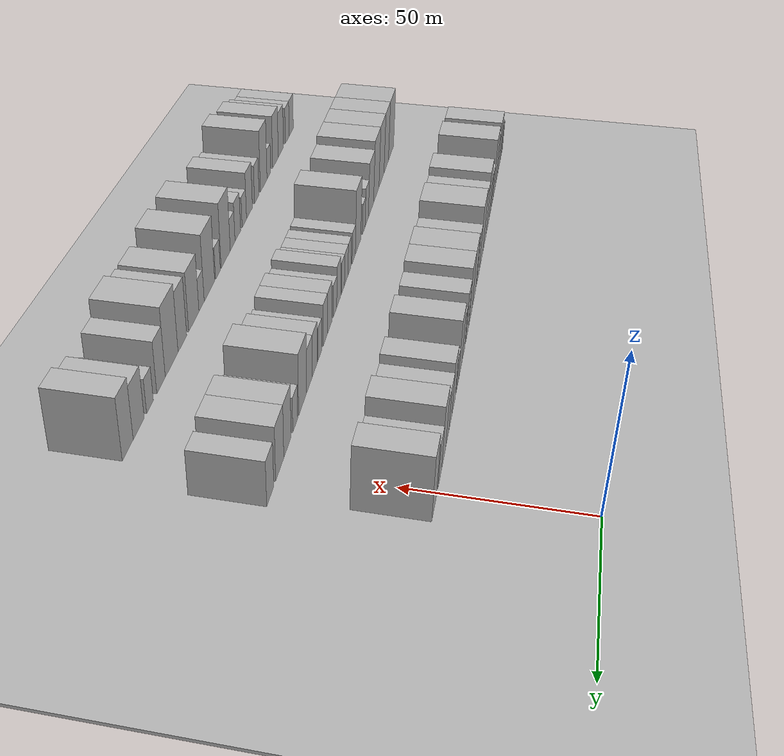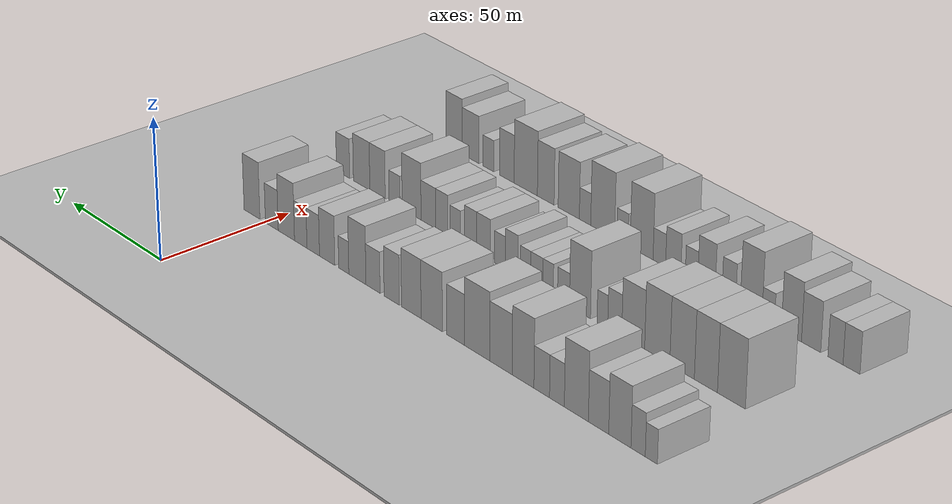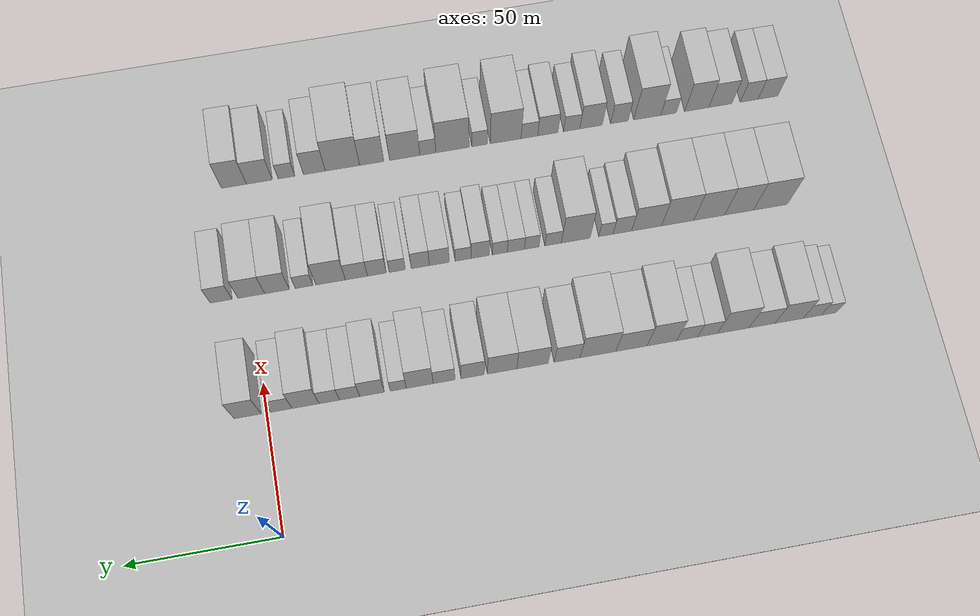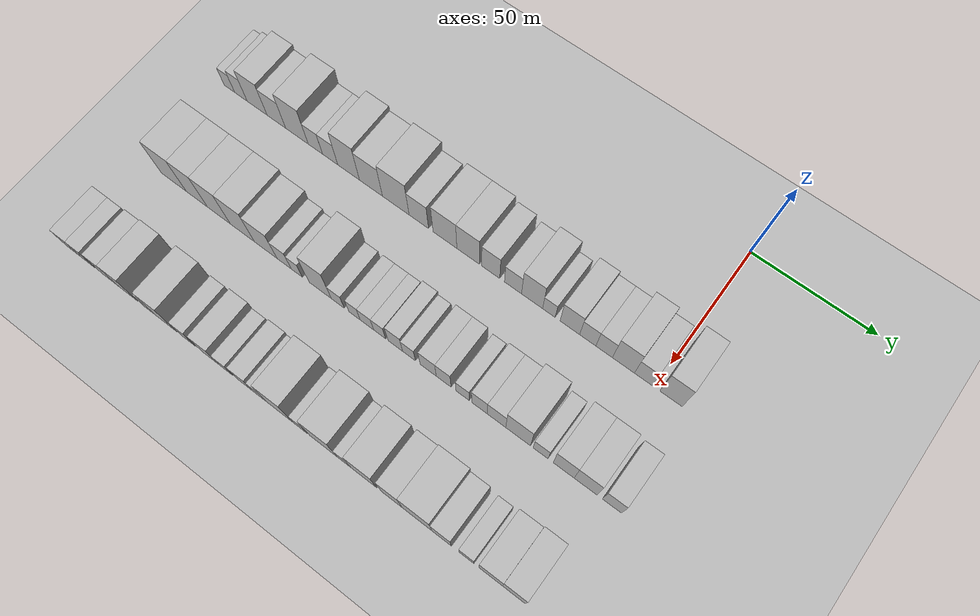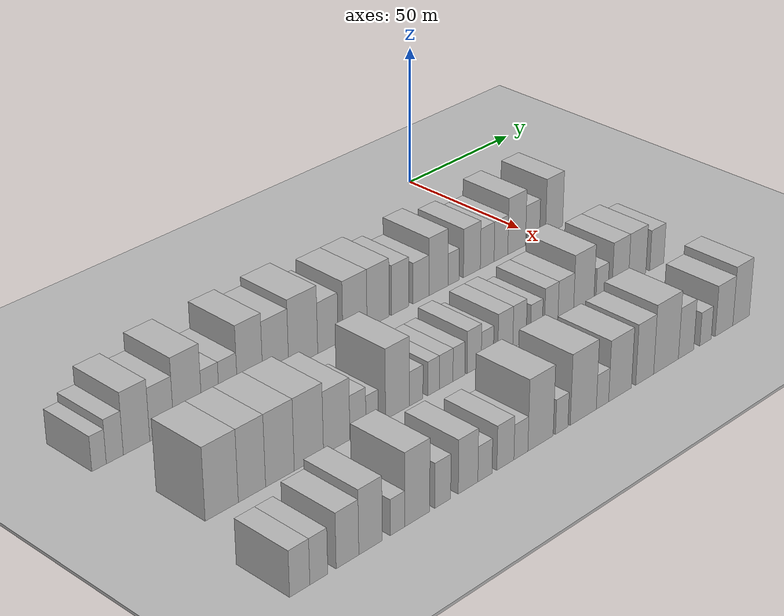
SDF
<sdf version="1.6">
 <world name="default">
  <include><name>ground_plane_1</name><uri>model://HANNAS_ground_plane</uri></include>
  <include>
   <name>ground_plane_2</name>
   <uri>model://HANNAS_ground_plane</uri>
   <pose>100 0 0  0 0 0</pose>
  </include>
  <model name="building_46">
   <static>1</static>
   <pose>50.0000 -186.2213 0 0.000000 0.000000 0.000000</pose>
   <link name="link">
    <pose>0 0 6.00 0 0 0</pose>
    <collision name="collision"><geometry><box><size>20.0000 5.1179 12.0000</size></box></geometry></collision>
    <visual name="visual">
     <cast_shadows>0</cast_shadows>
     <geometry><box><size>20.0000 5.1179 12.0000</size></box></geometry>
     <material>
      <script>
       <uri>model://HANNAS_wall/materials/scripts</uri>
       <uri>model://HANNAS_wall/materials/textures</uri>
       <name>vrc/HANNAS_wall</name>
      </script>
     </material>
    </visual>
   </link>
  </model>
  <model name="building_47">
   <static>1</static>
   <pose>50.0000 -180.6284 0 0.000000 0.000000 0.000000</pose>
   <link name="link">
    <pose>0 0 7.50 0 0 0</pose>
    <collision name="collision"><geometry><box><size>20.0000 6.0679 15.0000</size></box></geometry></collision>
    <visual name="visual">
     <cast_shadows>0</cast_shadows>
     <geometry><box><size>20.0000 6.0679 15.0000</size></box></geometry>
     <material>
      <script>
       <uri>model://HANNAS_wall/materials/scripts</uri>
       <uri>model://HANNAS_wall/materials/textures</uri>
       <name>vrc/HANNAS_wall</name>
      </script>
     </material>
    </visual>
   </link>
  </model>
  <model name="building_48">
   <static>1</static>
   <pose>50.0000 -172.8071 0 0.000000 0.000000 0.000000</pose>
   <link name="link">
    <pose>0 0 10.50 0 0 0</pose>
    <collision name="collision"><geometry><box><size>20.0000 9.5747 21.0000</size></box></geometry></collision>
    <visual name="visual">
     <cast_shadows>0</cast_shadows>
     <geometry><box><size>20.0000 9.5747 21.0000</size></box></geometry>
     <material>
      <script>
       <uri>model://HANNAS_wall/materials/scripts</uri>
       <uri>model://HANNAS_wall/materials/textures</uri>
       <name>vrc/HANNAS_wall</name>
      </script>
     </material>
    </visual>
   </link>
  </model>
  <model name="building_49">
   <static>1</static>
   <pose>50.0000 -163.5866 0 0.000000 0.000000 0.000000</pose>
   <link name="link">
    <pose>0 0 9.00 0 0 0</pose>
    <collision name="collision"><geometry><box><size>20.0000 8.8664 18.0000</size></box></geometry></collision>
    <visual name="visual">
     <cast_shadows>0</cast_shadows>
     <geometry><box><size>20.0000 8.8664 18.0000</size></box></geometry>
     <material>
      <script>
       <uri>model://HANNAS_wall/materials/scripts</uri>
       <uri>model://HANNAS_wall/materials/textures</uri>
       <name>vrc/HANNAS_wall</name>
      </script>
     </material>
    </visual>
   </link>
  </model>
  <model name="building_50">
   <static>1</static>
   <pose>50.0000 -153.8439 0 0.000000 0.000000 0.000000</pose>
   <link name="link">
    <pose>0 0 12.00 0 0 0</pose>
    <collision name="collision"><geometry><box><size>20.0000 10.6192 24.0000</size></box></geometry></collision>
    <visual name="visual">
     <cast_shadows>0</cast_shadows>
     <geometry><box><size>20.0000 10.6192 24.0000</size></box></geometry>
     <material>
      <script>
       <uri>model://HANNAS_wall/materials/scripts</uri>
       <uri>model://HANNAS_wall/materials/textures</uri>
       <name>vrc/HANNAS_wall</name>
      </script>
     </material>
    </visual>
   </link>
  </model>
  <model name="building_51">
   <static>1</static>
   <pose>50.0000 -145.2161 0 0.000000 0.000000 0.000000</pose>
   <link name="link">
    <pose>0 0 7.50 0 0 0</pose>
    <collision name="collision"><geometry><box><size>20.0000 6.6364 15.0000</size></box></geometry></collision>
    <visual name="visual">
     <cast_shadows>0</cast_shadows>
     <geometry><box><size>20.0000 6.6364 15.0000</size></box></geometry>
     <material>
      <script>
       <uri>model://HANNAS_wall/materials/scripts</uri>
       <uri>model://HANNAS_wall/materials/textures</uri>
       <name>vrc/HANNAS_wall</name>
      </script>
     </material>
    </visual>
   </link>
  </model>
  <model name="building_52">
   <static>1</static>
   <pose>50.0000 -138.3715 0 0.000000 0.000000 0.000000</pose>
   <link name="link">
    <pose>0 0 7.50 0 0 0</pose>
    <collision name="collision"><geometry><box><size>20.0000 7.0527 15.0000</size></box></geometry></collision>
    <visual name="visual">
     <cast_shadows>0</cast_shadows>
     <geometry><box><size>20.0000 7.0527 15.0000</size></box></geometry>
     <material>
      <script>
       <uri>model://HANNAS_wall/materials/scripts</uri>
       <uri>model://HANNAS_wall/materials/textures</uri>
       <name>vrc/HANNAS_wall</name>
      </script>
     </material>
    </visual>
   </link>
  </model>
  <model name="building_53">
   <static>1</static>
   <pose>50.0000 -129.8535 0 0.000000 0.000000 0.000000</pose>
   <link name="link">
    <pose>0 0 12.00 0 0 0</pose>
    <collision name="collision"><geometry><box><size>20.0000 9.9832 24.0000</size></box></geometry></collision>
    <visual name="visual">
     <cast_shadows>0</cast_shadows>
     <geometry><box><size>20.0000 9.9832 24.0000</size></box></geometry>
     <material>
      <script>
       <uri>model://HANNAS_wall/materials/scripts</uri>
       <uri>model://HANNAS_wall/materials/textures</uri>
       <name>vrc/HANNAS_wall</name>
      </script>
     </material>
    </visual>
   </link>
  </model>
  <model name="building_54">
   <static>1</static>
   <pose>50.0000 -119.6604 0 0.000000 0.000000 0.000000</pose>
   <link name="link">
    <pose>0 0 10.50 0 0 0</pose>
    <collision name="collision"><geometry><box><size>20.0000 10.4030 21.0000</size></box></geometry></collision>
    <visual name="visual">
     <cast_shadows>0</cast_shadows>
     <geometry><box><size>20.0000 10.4030 21.0000</size></box></geometry>
     <material>
      <script>
       <uri>model://HANNAS_wall/materials/scripts</uri>
       <uri>model://HANNAS_wall/materials/textures</uri>
       <name>vrc/HANNAS_wall</name>
      </script>
     </material>
    </visual>
   </link>
  </model>
  <model name="building_55">
   <static>1</static>
   <pose>50.0000 -108.4930 0 0.000000 0.000000 0.000000</pose>
   <link name="link">
    <pose>0 0 12.00 0 0 0</pose>
    <collision name="collision"><geometry><box><size>20.0000 11.9318 24.0000</size></box></geometry></collision>
    <visual name="visual">
     <cast_shadows>0</cast_shadows>
     <geometry><box><size>20.0000 11.9318 24.0000</size></box></geometry>
     <material>
      <script>
       <uri>model://HANNAS_wall/materials/scripts</uri>
       <uri>model://HANNAS_wall/materials/textures</uri>
       <name>vrc/HANNAS_wall</name>
      </script>
     </material>
    </visual>
   </link>
  </model>
  <model name="building_56">
   <static>1</static>
   <pose>50.0000 -98.2424 0 0.000000 0.000000 0.000000</pose>
   <link name="link">
    <pose>0 0 9.00 0 0 0</pose>
    <collision name="collision"><geometry><box><size>20.0000 8.5694 18.0000</size></box></geometry></collision>
    <visual name="visual">
     <cast_shadows>0</cast_shadows>
     <geometry><box><size>20.0000 8.5694 18.0000</size></box></geometry>
     <material>
      <script>
       <uri>model://HANNAS_wall/materials/scripts</uri>
       <uri>model://HANNAS_wall/materials/textures</uri>
       <name>vrc/HANNAS_wall</name>
      </script>
     </material>
    </visual>
   </link>
  </model>
  <model name="building_57">
   <static>1</static>
   <pose>50.0000 -86.7762 0 0.000000 0.000000 0.000000</pose>
   <link name="link">
    <pose>0 0 10.50 0 0 0</pose>
    <collision name="collision"><geometry><box><size>20.0000 10.3632 21.0000</size></box></geometry></collision>
    <visual name="visual">
     <cast_shadows>0</cast_shadows>
     <geometry><box><size>20.0000 10.3632 21.0000</size></box></geometry>
     <material>
      <script>
       <uri>model://HANNAS_wall/materials/scripts</uri>
       <uri>model://HANNAS_wall/materials/textures</uri>
       <name>vrc/HANNAS_wall</name>
      </script>
     </material>
    </visual>
   </link>
  </model>
  <model name="building_58">
   <static>1</static>
   <pose>50.0000 -76.7567 0 0.000000 0.000000 0.000000</pose>
   <link name="link">
    <pose>0 0 10.50 0 0 0</pose>
    <collision name="collision"><geometry><box><size>20.0000 9.6757 21.0000</size></box></geometry></collision>
    <visual name="visual">
     <cast_shadows>0</cast_shadows>
     <geometry><box><size>20.0000 9.6757 21.0000</size></box></geometry>
     <material>
      <script>
       <uri>model://HANNAS_wall/materials/scripts</uri>
       <uri>model://HANNAS_wall/materials/textures</uri>
       <name>vrc/HANNAS_wall</name>
      </script>
     </material>
    </visual>
   </link>
  </model>
  <model name="building_59">
   <static>1</static>
   <pose>50.0000 -67.0836 0 0.000000 0.000000 0.000000</pose>
   <link name="link">
    <pose>0 0 9.00 0 0 0</pose>
    <collision name="collision"><geometry><box><size>20.0000 7.6705 18.0000</size></box></geometry></collision>
    <visual name="visual">
     <cast_shadows>0</cast_shadows>
     <geometry><box><size>20.0000 7.6705 18.0000</size></box></geometry>
     <material>
      <script>
       <uri>model://HANNAS_wall/materials/scripts</uri>
       <uri>model://HANNAS_wall/materials/textures</uri>
       <name>vrc/HANNAS_wall</name>
      </script>
     </material>
    </visual>
   </link>
  </model>
  <model name="building_60">
   <static>1</static>
   <pose>50.0000 -57.6711 0 0.000000 0.000000 0.000000</pose>
   <link name="link">
    <pose>0 0 7.50 0 0 0</pose>
    <collision name="collision"><geometry><box><size>20.0000 7.1544 15.0000</size></box></geometry></collision>
    <visual name="visual">
     <cast_shadows>0</cast_shadows>
     <geometry><box><size>20.0000 7.1544 15.0000</size></box></geometry>
     <material>
      <script>
       <uri>model://HANNAS_wall/materials/scripts</uri>
       <uri>model://HANNAS_wall/materials/textures</uri>
       <name>vrc/HANNAS_wall</name>
      </script>
     </material>
    </visual>
   </link>
  </model>
  <model name="building_61">
   <static>1</static>
   <pose>50.0000 -49.6958 0 0.000000 0.000000 0.000000</pose>
   <link name="link">
    <pose>0 0 10.50 0 0 0</pose>
    <collision name="collision"><geometry><box><size>20.0000 8.7962 21.0000</size></box></geometry></collision>
    <visual name="visual">
     <cast_shadows>0</cast_shadows>
     <geometry><box><size>20.0000 8.7962 21.0000</size></box></geometry>
     <material>
      <script>
       <uri>model://HANNAS_wall/materials/scripts</uri>
       <uri>model://HANNAS_wall/materials/textures</uri>
       <name>vrc/HANNAS_wall</name>
      </script>
     </material>
    </visual>
   </link>
  </model>
  <model name="building_62">
   <static>1</static>
   <pose>50.0000 -42.6953 0 0.000000 0.000000 0.000000</pose>
   <link name="link">
    <pose>0 0 6.00 0 0 0</pose>
    <collision name="collision"><geometry><box><size>20.0000 5.2047 12.0000</size></box></geometry></collision>
    <visual name="visual">
     <cast_shadows>0</cast_shadows>
     <geometry><box><size>20.0000 5.2047 12.0000</size></box></geometry>
     <material>
      <script>
       <uri>model://HANNAS_wall/materials/scripts</uri>
       <uri>model://HANNAS_wall/materials/textures</uri>
       <name>vrc/HANNAS_wall</name>
      </script>
     </material>
    </visual>
   </link>
  </model>
  <model name="building_63">
   <static>1</static>
   <pose>50.0000 -34.0878 0 0.000000 0.000000 0.000000</pose>
   <link name="link">
    <pose>0 0 9.00 0 0 0</pose>
    <collision name="collision"><geometry><box><size>20.0000 8.0103 18.0000</size></box></geometry></collision>
    <visual name="visual">
     <cast_shadows>0</cast_shadows>
     <geometry><box><size>20.0000 8.0103 18.0000</size></box></geometry>
     <material>
      <script>
       <uri>model://HANNAS_wall/materials/scripts</uri>
       <uri>model://HANNAS_wall/materials/textures</uri>
       <name>vrc/HANNAS_wall</name>
      </script>
     </material>
    </visual>
   </link>
  </model>
  <model name="building_64">
   <static>1</static>
   <pose>50.0000 -26.7853 0 0.000000 0.000000 0.000000</pose>
   <link name="link">
    <pose>0 0 7.50 0 0 0</pose>
    <collision name="collision"><geometry><box><size>20.0000 6.5948 15.0000</size></box></geometry></collision>
    <visual name="visual">
     <cast_shadows>0</cast_shadows>
     <geometry><box><size>20.0000 6.5948 15.0000</size></box></geometry>
     <material>
      <script>
       <uri>model://HANNAS_wall/materials/scripts</uri>
       <uri>model://HANNAS_wall/materials/textures</uri>
       <name>vrc/HANNAS_wall</name>
      </script>
     </material>
    </visual>
   </link>
  </model>
  <model name="building_65">
   <static>1</static>
   <pose>50.0000 -20.1616 0 0.000000 0.000000 0.000000</pose>
   <link name="link">
    <pose>0 0 7.50 0 0 0</pose>
    <collision name="collision"><geometry><box><size>20.0000 6.6525 15.0000</size></box></geometry></collision>
    <visual name="visual">
     <cast_shadows>0</cast_shadows>
     <geometry><box><size>20.0000 6.6525 15.0000</size></box></geometry>
     <material>
      <script>
       <uri>model://HANNAS_wall/materials/scripts</uri>
       <uri>model://HANNAS_wall/materials/textures</uri>
       <name>vrc/HANNAS_wall</name>
      </script>
     </material>
    </visual>
   </link>
  </model>
  <model name="building_66">
   <static>1</static>
   <pose>50.0000 -12.4660 0 0.000000 0.000000 0.000000</pose>
   <link name="link">
    <pose>0 0 10.50 0 0 0</pose>
    <collision name="collision"><geometry><box><size>20.0000 8.7388 21.0000</size></box></geometry></collision>
    <visual name="visual">
     <cast_shadows>0</cast_shadows>
     <geometry><box><size>20.0000 8.7388 21.0000</size></box></geometry>
     <material>
      <script>
       <uri>model://HANNAS_wall/materials/scripts</uri>
       <uri>model://HANNAS_wall/materials/textures</uri>
       <name>vrc/HANNAS_wall</name>
      </script>
     </material>
    </visual>
   </link>
  </model>
  <model name="building_67">
   <static>1</static>
   <pose>50.0000 -4.6055 0 0.000000 0.000000 0.000000</pose>
   <link name="link">
    <pose>0 0 7.50 0 0 0</pose>
    <collision name="collision"><geometry><box><size>20.0000 6.9823 15.0000</size></box></geometry></collision>
    <visual name="visual">
     <cast_shadows>0</cast_shadows>
     <geometry><box><size>20.0000 6.9823 15.0000</size></box></geometry>
     <material>
      <script>
       <uri>model://HANNAS_wall/materials/scripts</uri>
       <uri>model://HANNAS_wall/materials/textures</uri>
       <name>vrc/HANNAS_wall</name>
      </script>
     </material>
    </visual>
   </link>
  </model>
  <model name="building_68">
   <static>1</static>
   <pose>50.0000 6.2458 0 0.000000 0.000000 0.000000</pose>
   <link name="link">
    <pose>0 0 10.50 0 0 0</pose>
    <collision name="collision"><geometry><box><size>20.0000 8.7205 21.0000</size></box></geometry></collision>
    <visual name="visual">
     <cast_shadows>0</cast_shadows>
     <geometry><box><size>20.0000 8.7205 21.0000</size></box></geometry>
     <material>
      <script>
       <uri>model://HANNAS_wall/materials/scripts</uri>
       <uri>model://HANNAS_wall/materials/textures</uri>
       <name>vrc/HANNAS_wall</name>
      </script>
     </material>
    </visual>
   </link>
  </model>
  <model name="building_189">
   <static>1</static>
   <pose>90.0000 -176.7323 0 0.000000 0.000000 0.000000</pose>
   <link name="link">
    <pose>0 0 12.00 0 0 0</pose>
    <collision name="collision"><geometry><box><size>20.0000 11.8570 24.0000</size></box></geometry></collision>
    <visual name="visual">
     <cast_shadows>0</cast_shadows>
     <geometry><box><size>20.0000 11.8570 24.0000</size></box></geometry>
     <material>
      <script>
       <uri>model://HANNAS_wall/materials/scripts</uri>
       <uri>model://HANNAS_wall/materials/textures</uri>
       <name>vrc/HANNAS_wall</name>
      </script>
     </material>
    </visual>
   </link>
  </model>
  <model name="building_190">
   <static>1</static>
   <pose>90.0000 -165.8183 0 0.000000 0.000000 0.000000</pose>
   <link name="link">
    <pose>0 0 12.00 0 0 0</pose>
    <collision name="collision"><geometry><box><size>20.0000 9.9711 24.0000</size></box></geometry></collision>
    <visual name="visual">
     <cast_shadows>0</cast_shadows>
     <geometry><box><size>20.0000 9.9711 24.0000</size></box></geometry>
     <material>
      <script>
       <uri>model://HANNAS_wall/materials/scripts</uri>
       <uri>model://HANNAS_wall/materials/textures</uri>
       <name>vrc/HANNAS_wall</name>
      </script>
     </material>
    </visual>
   </link>
  </model>
  <model name="building_191">
   <static>1</static>
   <pose>90.0000 -155.4725 0 0.000000 0.000000 0.000000</pose>
   <link name="link">
    <pose>0 0 12.00 0 0 0</pose>
    <collision name="collision"><geometry><box><size>20.0000 10.7203 24.0000</size></box></geometry></collision>
    <visual name="visual">
     <cast_shadows>0</cast_shadows>
     <geometry><box><size>20.0000 10.7203 24.0000</size></box></geometry>
     <material>
      <script>
       <uri>model://HANNAS_wall/materials/scripts</uri>
       <uri>model://HANNAS_wall/materials/textures</uri>
       <name>vrc/HANNAS_wall</name>
      </script>
     </material>
    </visual>
   </link>
  </model>
  <model name="building_192">
   <static>1</static>
   <pose>90.0000 -144.5180 0 0.000000 0.000000 0.000000</pose>
   <link name="link">
    <pose>0 0 12.00 0 0 0</pose>
    <collision name="collision"><geometry><box><size>20.0000 11.1888 24.0000</size></box></geometry></collision>
    <visual name="visual">
     <cast_shadows>0</cast_shadows>
     <geometry><box><size>20.0000 11.1888 24.0000</size></box></geometry>
     <material>
      <script>
       <uri>model://HANNAS_wall/materials/scripts</uri>
       <uri>model://HANNAS_wall/materials/textures</uri>
       <name>vrc/HANNAS_wall</name>
      </script>
     </material>
    </visual>
   </link>
  </model>
  <model name="building_193">
   <static>1</static>
   <pose>90.0000 -133.7678 0 0.000000 0.000000 0.000000</pose>
   <link name="link">
    <pose>0 0 10.50 0 0 0</pose>
    <collision name="collision"><geometry><box><size>20.0000 10.3115 21.0000</size></box></geometry></collision>
    <visual name="visual">
     <cast_shadows>0</cast_shadows>
     <geometry><box><size>20.0000 10.3115 21.0000</size></box></geometry>
     <material>
      <script>
       <uri>model://HANNAS_wall/materials/scripts</uri>
       <uri>model://HANNAS_wall/materials/textures</uri>
       <name>vrc/HANNAS_wall</name>
      </script>
     </material>
    </visual>
   </link>
  </model>
  <model name="building_194">
   <static>1</static>
   <pose>90.0000 -125.4086 0 0.000000 0.000000 0.000000</pose>
   <link name="link">
    <pose>0 0 7.50 0 0 0</pose>
    <collision name="collision"><geometry><box><size>20.0000 6.4068 15.0000</size></box></geometry></collision>
    <visual name="visual">
     <cast_shadows>0</cast_shadows>
     <geometry><box><size>20.0000 6.4068 15.0000</size></box></geometry>
     <material>
      <script>
       <uri>model://HANNAS_wall/materials/scripts</uri>
       <uri>model://HANNAS_wall/materials/textures</uri>
       <name>vrc/HANNAS_wall</name>
      </script>
     </material>
    </visual>
   </link>
  </model>
  <model name="building_195">
   <static>1</static>
   <pose>90.0000 -119.7571 0 0.000000 0.000000 0.000000</pose>
   <link name="link">
    <pose>0 0 6.00 0 0 0</pose>
    <collision name="collision"><geometry><box><size>20.0000 4.8961 12.0000</size></box></geometry></collision>
    <visual name="visual">
     <cast_shadows>0</cast_shadows>
     <geometry><box><size>20.0000 4.8961 12.0000</size></box></geometry>
     <material>
      <script>
       <uri>model://HANNAS_wall/materials/scripts</uri>
       <uri>model://HANNAS_wall/materials/textures</uri>
       <name>vrc/HANNAS_wall</name>
      </script>
     </material>
    </visual>
   </link>
  </model>
  <model name="building_196">
   <static>1</static>
   <pose>90.0000 -109.3936 0 0.000000 0.000000 0.000000</pose>
   <link name="link">
    <pose>0 0 12.00 0 0 0</pose>
    <collision name="collision"><geometry><box><size>20.0000 9.8309 24.0000</size></box></geometry></collision>
    <visual name="visual">
     <cast_shadows>0</cast_shadows>
     <geometry><box><size>20.0000 9.8309 24.0000</size></box></geometry>
     <material>
      <script>
       <uri>model://HANNAS_wall/materials/scripts</uri>
       <uri>model://HANNAS_wall/materials/textures</uri>
       <name>vrc/HANNAS_wall</name>
      </script>
     </material>
    </visual>
   </link>
  </model>
  <model name="building_197">
   <static>1</static>
   <pose>90.0000 -101.6496 0 0.000000 0.000000 0.000000</pose>
   <link name="link">
    <pose>0 0 6.00 0 0 0</pose>
    <collision name="collision"><geometry><box><size>20.0000 5.6570 12.0000</size></box></geometry></collision>
    <visual name="visual">
     <cast_shadows>0</cast_shadows>
     <geometry><box><size>20.0000 5.6570 12.0000</size></box></geometry>
     <material>
      <script>
       <uri>model://HANNAS_wall/materials/scripts</uri>
       <uri>model://HANNAS_wall/materials/textures</uri>
       <name>vrc/HANNAS_wall</name>
      </script>
     </material>
    </visual>
   </link>
  </model>
  <model name="building_198">
   <static>1</static>
   <pose>90.0000 -94.3480 0 0.000000 0.000000 0.000000</pose>
   <link name="link">
    <pose>0 0 6.00 0 0 0</pose>
    <collision name="collision"><geometry><box><size>20.0000 4.9462 12.0000</size></box></geometry></collision>
    <visual name="visual">
     <cast_shadows>0</cast_shadows>
     <geometry><box><size>20.0000 4.9462 12.0000</size></box></geometry>
     <material>
      <script>
       <uri>model://HANNAS_wall/materials/scripts</uri>
       <uri>model://HANNAS_wall/materials/textures</uri>
       <name>vrc/HANNAS_wall</name>
      </script>
     </material>
    </visual>
   </link>
  </model>
  <model name="building_199">
   <static>1</static>
   <pose>90.0000 -88.9680 0 0.000000 0.000000 0.000000</pose>
   <link name="link">
    <pose>0 0 6.00 0 0 0</pose>
    <collision name="collision"><geometry><box><size>20.0000 5.8138 12.0000</size></box></geometry></collision>
    <visual name="visual">
     <cast_shadows>0</cast_shadows>
     <geometry><box><size>20.0000 5.8138 12.0000</size></box></geometry>
     <material>
      <script>
       <uri>model://HANNAS_wall/materials/scripts</uri>
       <uri>model://HANNAS_wall/materials/textures</uri>
       <name>vrc/HANNAS_wall</name>
      </script>
     </material>
    </visual>
   </link>
  </model>
  <model name="building_200">
   <static>1</static>
   <pose>90.0000 -83.5003 0 0.000000 0.000000 0.000000</pose>
   <link name="link">
    <pose>0 0 6.00 0 0 0</pose>
    <collision name="collision"><geometry><box><size>20.0000 5.1215 12.0000</size></box></geometry></collision>
    <visual name="visual">
     <cast_shadows>0</cast_shadows>
     <geometry><box><size>20.0000 5.1215 12.0000</size></box></geometry>
     <material>
      <script>
       <uri>model://HANNAS_wall/materials/scripts</uri>
       <uri>model://HANNAS_wall/materials/textures</uri>
       <name>vrc/HANNAS_wall</name>
      </script>
     </material>
    </visual>
   </link>
  </model>
  <model name="building_201">
   <static>1</static>
   <pose>90.0000 -76.8345 0 0.000000 0.000000 0.000000</pose>
   <link name="link">
    <pose>0 0 7.50 0 0 0</pose>
    <collision name="collision"><geometry><box><size>20.0000 6.2100 15.0000</size></box></geometry></collision>
    <visual name="visual">
     <cast_shadows>0</cast_shadows>
     <geometry><box><size>20.0000 6.2100 15.0000</size></box></geometry>
     <material>
      <script>
       <uri>model://HANNAS_wall/materials/scripts</uri>
       <uri>model://HANNAS_wall/materials/textures</uri>
       <name>vrc/HANNAS_wall</name>
      </script>
     </material>
    </visual>
   </link>
  </model>
  <model name="building_202">
   <static>1</static>
   <pose>90.0000 -71.0354 0 0.000000 0.000000 0.000000</pose>
   <link name="link">
    <pose>0 0 6.00 0 0 0</pose>
    <collision name="collision"><geometry><box><size>20.0000 5.3882 12.0000</size></box></geometry></collision>
    <visual name="visual">
     <cast_shadows>0</cast_shadows>
     <geometry><box><size>20.0000 5.3882 12.0000</size></box></geometry>
     <material>
      <script>
       <uri>model://HANNAS_wall/materials/scripts</uri>
       <uri>model://HANNAS_wall/materials/textures</uri>
       <name>vrc/HANNAS_wall</name>
      </script>
     </material>
    </visual>
   </link>
  </model>
  <model name="building_203">
   <static>1</static>
   <pose>90.0000 -62.9731 0 0.000000 0.000000 0.000000</pose>
   <link name="link">
    <pose>0 0 7.50 0 0 0</pose>
    <collision name="collision"><geometry><box><size>20.0000 6.7364 15.0000</size></box></geometry></collision>
    <visual name="visual">
     <cast_shadows>0</cast_shadows>
     <geometry><box><size>20.0000 6.7364 15.0000</size></box></geometry>
     <material>
      <script>
       <uri>model://HANNAS_wall/materials/scripts</uri>
       <uri>model://HANNAS_wall/materials/textures</uri>
       <name>vrc/HANNAS_wall</name>
      </script>
     </material>
    </visual>
   </link>
  </model>
  <model name="building_204">
   <static>1</static>
   <pose>90.0000 -56.5542 0 0.000000 0.000000 0.000000</pose>
   <link name="link">
    <pose>0 0 7.50 0 0 0</pose>
    <collision name="collision"><geometry><box><size>20.0000 6.1013 15.0000</size></box></geometry></collision>
    <visual name="visual">
     <cast_shadows>0</cast_shadows>
     <geometry><box><size>20.0000 6.1013 15.0000</size></box></geometry>
     <material>
      <script>
       <uri>model://HANNAS_wall/materials/scripts</uri>
       <uri>model://HANNAS_wall/materials/textures</uri>
       <name>vrc/HANNAS_wall</name>
      </script>
     </material>
    </visual>
   </link>
  </model>
  <model name="building_205">
   <static>1</static>
   <pose>90.0000 -48.7841 0 0.000000 0.000000 0.000000</pose>
   <link name="link">
    <pose>0 0 6.00 0 0 0</pose>
    <collision name="collision"><geometry><box><size>20.0000 5.4390 12.0000</size></box></geometry></collision>
    <visual name="visual">
     <cast_shadows>0</cast_shadows>
     <geometry><box><size>20.0000 5.4390 12.0000</size></box></geometry>
     <material>
      <script>
       <uri>model://HANNAS_wall/materials/scripts</uri>
       <uri>model://HANNAS_wall/materials/textures</uri>
       <name>vrc/HANNAS_wall</name>
      </script>
     </material>
    </visual>
   </link>
  </model>
  <model name="building_206">
   <static>1</static>
   <pose>90.0000 -41.9028 0 0.000000 0.000000 0.000000</pose>
   <link name="link">
    <pose>0 0 7.50 0 0 0</pose>
    <collision name="collision"><geometry><box><size>20.0000 6.3235 15.0000</size></box></geometry></collision>
    <visual name="visual">
     <cast_shadows>0</cast_shadows>
     <geometry><box><size>20.0000 6.3235 15.0000</size></box></geometry>
     <material>
      <script>
       <uri>model://HANNAS_wall/materials/scripts</uri>
       <uri>model://HANNAS_wall/materials/textures</uri>
       <name>vrc/HANNAS_wall</name>
      </script>
     </material>
    </visual>
   </link>
  </model>
  <model name="building_207">
   <static>1</static>
   <pose>90.0000 -35.0129 0 0.000000 0.000000 0.000000</pose>
   <link name="link">
    <pose>0 0 7.50 0 0 0</pose>
    <collision name="collision"><geometry><box><size>20.0000 7.4564 15.0000</size></box></geometry></collision>
    <visual name="visual">
     <cast_shadows>0</cast_shadows>
     <geometry><box><size>20.0000 7.4564 15.0000</size></box></geometry>
     <material>
      <script>
       <uri>model://HANNAS_wall/materials/scripts</uri>
       <uri>model://HANNAS_wall/materials/textures</uri>
       <name>vrc/HANNAS_wall</name>
      </script>
     </material>
    </visual>
   </link>
  </model>
  <model name="building_208">
   <static>1</static>
   <pose>90.0000 -26.3475 0 0.000000 0.000000 0.000000</pose>
   <link name="link">
    <pose>0 0 10.50 0 0 0</pose>
    <collision name="collision"><geometry><box><size>20.0000 9.8745 21.0000</size></box></geometry></collision>
    <visual name="visual">
     <cast_shadows>0</cast_shadows>
     <geometry><box><size>20.0000 9.8745 21.0000</size></box></geometry>
     <material>
      <script>
       <uri>model://HANNAS_wall/materials/scripts</uri>
       <uri>model://HANNAS_wall/materials/textures</uri>
       <name>vrc/HANNAS_wall</name>
      </script>
     </material>
    </visual>
   </link>
  </model>
  <model name="building_209">
   <static>1</static>
   <pose>90.0000 -17.4646 0 0.000000 0.000000 0.000000</pose>
   <link name="link">
    <pose>0 0 6.00 0 0 0</pose>
    <collision name="collision"><geometry><box><size>20.0000 5.8913 12.0000</size></box></geometry></collision>
    <visual name="visual">
     <cast_shadows>0</cast_shadows>
     <geometry><box><size>20.0000 5.8913 12.0000</size></box></geometry>
     <material>
      <script>
       <uri>model://HANNAS_wall/materials/scripts</uri>
       <uri>model://HANNAS_wall/materials/textures</uri>
       <name>vrc/HANNAS_wall</name>
      </script>
     </material>
    </visual>
   </link>
  </model>
  <model name="building_210">
   <static>1</static>
   <pose>90.0000 -8.4083 0 0.000000 0.000000 0.000000</pose>
   <link name="link">
    <pose>0 0 9.00 0 0 0</pose>
    <collision name="collision"><geometry><box><size>20.0000 8.2212 18.0000</size></box></geometry></collision>
    <visual name="visual">
     <cast_shadows>0</cast_shadows>
     <geometry><box><size>20.0000 8.2212 18.0000</size></box></geometry>
     <material>
      <script>
       <uri>model://HANNAS_wall/materials/scripts</uri>
       <uri>model://HANNAS_wall/materials/textures</uri>
       <name>vrc/HANNAS_wall</name>
      </script>
     </material>
    </visual>
   </link>
  </model>
  <model name="building_211">
   <static>1</static>
   <pose>90.0000 0.1334 0 0.000000 0.000000 0.000000</pose>
   <link name="link">
    <pose>0 0 9.00 0 0 0</pose>
    <collision name="collision"><geometry><box><size>20.0000 8.8623 18.0000</size></box></geometry></collision>
    <visual name="visual">
     <cast_shadows>0</cast_shadows>
     <geometry><box><size>20.0000 8.8623 18.0000</size></box></geometry>
     <material>
      <script>
       <uri>model://HANNAS_wall/materials/scripts</uri>
       <uri>model://HANNAS_wall/materials/textures</uri>
       <name>vrc/HANNAS_wall</name>
      </script>
     </material>
    </visual>
   </link>
  </model>
  <model name="building_212">
   <static>1</static>
   <pose>90.0000 10.1912 0 0.000000 0.000000 0.000000</pose>
   <link name="link">
    <pose>0 0 7.50 0 0 0</pose>
    <collision name="collision"><geometry><box><size>20.0000 7.2533 15.0000</size></box></geometry></collision>
    <visual name="visual">
     <cast_shadows>0</cast_shadows>
     <geometry><box><size>20.0000 7.2533 15.0000</size></box></geometry>
     <material>
      <script>
       <uri>model://HANNAS_wall/materials/scripts</uri>
       <uri>model://HANNAS_wall/materials/textures</uri>
       <name>vrc/HANNAS_wall</name>
      </script>
     </material>
    </visual>
   </link>
  </model>
  <model name="building_328">
   <static>1</static>
   <pose>130.0000 -186.1136 0 0.000000 0.000000 0.000000</pose>
   <link name="link">
    <pose>0 0 7.50 0 0 0</pose>
    <collision name="collision"><geometry><box><size>20.0000 7.0665 15.0000</size></box></geometry></collision>
    <visual name="visual">
     <cast_shadows>0</cast_shadows>
     <geometry><box><size>20.0000 7.0665 15.0000</size></box></geometry>
     <material>
      <script>
       <uri>model://HANNAS_wall/materials/scripts</uri>
       <uri>model://HANNAS_wall/materials/textures</uri>
       <name>vrc/HANNAS_wall</name>
      </script>
     </material>
    </visual>
   </link>
  </model>
  <model name="building_329">
   <static>1</static>
   <pose>130.0000 -179.3968 0 0.000000 0.000000 0.000000</pose>
   <link name="link">
    <pose>0 0 7.50 0 0 0</pose>
    <collision name="collision"><geometry><box><size>20.0000 6.3672 15.0000</size></box></geometry></collision>
    <visual name="visual">
     <cast_shadows>0</cast_shadows>
     <geometry><box><size>20.0000 6.3672 15.0000</size></box></geometry>
     <material>
      <script>
       <uri>model://HANNAS_wall/materials/scripts</uri>
       <uri>model://HANNAS_wall/materials/textures</uri>
       <name>vrc/HANNAS_wall</name>
      </script>
     </material>
    </visual>
   </link>
  </model>
  <model name="building_330">
   <static>1</static>
   <pose>130.0000 -169.0999 0 0.000000 0.000000 0.000000</pose>
   <link name="link">
    <pose>0 0 9.00 0 0 0</pose>
    <collision name="collision"><geometry><box><size>20.0000 8.2265 18.0000</size></box></geometry></collision>
    <visual name="visual">
     <cast_shadows>0</cast_shadows>
     <geometry><box><size>20.0000 8.2265 18.0000</size></box></geometry>
     <material>
      <script>
       <uri>model://HANNAS_wall/materials/scripts</uri>
       <uri>model://HANNAS_wall/materials/textures</uri>
       <name>vrc/HANNAS_wall</name>
      </script>
     </material>
    </visual>
   </link>
  </model>
  <model name="building_331">
   <static>1</static>
   <pose>130.0000 -160.6512 0 0.000000 0.000000 0.000000</pose>
   <link name="link">
    <pose>0 0 10.50 0 0 0</pose>
    <collision name="collision"><geometry><box><size>20.0000 8.6709 21.0000</size></box></geometry></collision>
    <visual name="visual">
     <cast_shadows>0</cast_shadows>
     <geometry><box><size>20.0000 8.6709 21.0000</size></box></geometry>
     <material>
      <script>
       <uri>model://HANNAS_wall/materials/scripts</uri>
       <uri>model://HANNAS_wall/materials/textures</uri>
       <name>vrc/HANNAS_wall</name>
      </script>
     </material>
    </visual>
   </link>
  </model>
  <model name="building_332">
   <static>1</static>
   <pose>130.0000 -150.5715 0 0.000000 0.000000 0.000000</pose>
   <link name="link">
    <pose>0 0 6.00 0 0 0</pose>
    <collision name="collision"><geometry><box><size>20.0000 5.4884 12.0000</size></box></geometry></collision>
    <visual name="visual">
     <cast_shadows>0</cast_shadows>
     <geometry><box><size>20.0000 5.4884 12.0000</size></box></geometry>
     <material>
      <script>
       <uri>model://HANNAS_wall/materials/scripts</uri>
       <uri>model://HANNAS_wall/materials/textures</uri>
       <name>vrc/HANNAS_wall</name>
      </script>
     </material>
    </visual>
   </link>
  </model>
  <model name="building_333">
   <static>1</static>
   <pose>130.0000 -143.0251 0 0.000000 0.000000 0.000000</pose>
   <link name="link">
    <pose>0 0 12.00 0 0 0</pose>
    <collision name="collision"><geometry><box><size>20.0000 9.6045 24.0000</size></box></geometry></collision>
    <visual name="visual">
     <cast_shadows>0</cast_shadows>
     <geometry><box><size>20.0000 9.6045 24.0000</size></box></geometry>
     <material>
      <script>
       <uri>model://HANNAS_wall/materials/scripts</uri>
       <uri>model://HANNAS_wall/materials/textures</uri>
       <name>vrc/HANNAS_wall</name>
      </script>
     </material>
    </visual>
   </link>
  </model>
  <model name="building_334">
   <static>1</static>
   <pose>130.0000 -133.1279 0 0.000000 0.000000 0.000000</pose>
   <link name="link">
    <pose>0 0 7.50 0 0 0</pose>
    <collision name="collision"><geometry><box><size>20.0000 6.1898 15.0000</size></box></geometry></collision>
    <visual name="visual">
     <cast_shadows>0</cast_shadows>
     <geometry><box><size>20.0000 6.1898 15.0000</size></box></geometry>
     <material>
      <script>
       <uri>model://HANNAS_wall/materials/scripts</uri>
       <uri>model://HANNAS_wall/materials/textures</uri>
       <name>vrc/HANNAS_wall</name>
      </script>
     </material>
    </visual>
   </link>
  </model>
  <model name="building_335">
   <static>1</static>
   <pose>130.0000 -123.0904 0 0.000000 0.000000 0.000000</pose>
   <link name="link">
    <pose>0 0 9.00 0 0 0</pose>
    <collision name="collision"><geometry><box><size>20.0000 7.8852 18.0000</size></box></geometry></collision>
    <visual name="visual">
     <cast_shadows>0</cast_shadows>
     <geometry><box><size>20.0000 7.8852 18.0000</size></box></geometry>
     <material>
      <script>
       <uri>model://HANNAS_wall/materials/scripts</uri>
       <uri>model://HANNAS_wall/materials/textures</uri>
       <name>vrc/HANNAS_wall</name>
      </script>
     </material>
    </visual>
   </link>
  </model>
  <model name="building_336">
   <static>1</static>
   <pose>130.0000 -116.2671 0 0.000000 0.000000 0.000000</pose>
   <link name="link">
    <pose>0 0 6.00 0 0 0</pose>
    <collision name="collision"><geometry><box><size>20.0000 5.7614 12.0000</size></box></geometry></collision>
    <visual name="visual">
     <cast_shadows>0</cast_shadows>
     <geometry><box><size>20.0000 5.7614 12.0000</size></box></geometry>
     <material>
      <script>
       <uri>model://HANNAS_wall/materials/scripts</uri>
       <uri>model://HANNAS_wall/materials/textures</uri>
       <name>vrc/HANNAS_wall</name>
      </script>
     </material>
    </visual>
   </link>
  </model>
  <model name="building_337">
   <static>1</static>
   <pose>130.0000 -107.8517 0 0.000000 0.000000 0.000000</pose>
   <link name="link">
    <pose>0 0 7.50 0 0 0</pose>
    <collision name="collision"><geometry><box><size>20.0000 7.0694 15.0000</size></box></geometry></collision>
    <visual name="visual">
     <cast_shadows>0</cast_shadows>
     <geometry><box><size>20.0000 7.0694 15.0000</size></box></geometry>
     <material>
      <script>
       <uri>model://HANNAS_wall/materials/scripts</uri>
       <uri>model://HANNAS_wall/materials/textures</uri>
       <name>vrc/HANNAS_wall</name>
      </script>
     </material>
    </visual>
   </link>
  </model>
  <model name="building_338">
   <static>1</static>
   <pose>130.0000 -101.3799 0 0.000000 0.000000 0.000000</pose>
   <link name="link">
    <pose>0 0 6.00 0 0 0</pose>
    <collision name="collision"><geometry><box><size>20.0000 5.8743 12.0000</size></box></geometry></collision>
    <visual name="visual">
     <cast_shadows>0</cast_shadows>
     <geometry><box><size>20.0000 5.8743 12.0000</size></box></geometry>
     <material>
      <script>
       <uri>model://HANNAS_wall/materials/scripts</uri>
       <uri>model://HANNAS_wall/materials/textures</uri>
       <name>vrc/HANNAS_wall</name>
      </script>
     </material>
    </visual>
   </link>
  </model>
  <model name="building_339">
   <static>1</static>
   <pose>130.0000 -93.0318 0 0.000000 0.000000 0.000000</pose>
   <link name="link">
    <pose>0 0 12.00 0 0 0</pose>
    <collision name="collision"><geometry><box><size>20.0000 10.8219 24.0000</size></box></geometry></collision>
    <visual name="visual">
     <cast_shadows>0</cast_shadows>
     <geometry><box><size>20.0000 10.8219 24.0000</size></box></geometry>
     <material>
      <script>
       <uri>model://HANNAS_wall/materials/scripts</uri>
       <uri>model://HANNAS_wall/materials/textures</uri>
       <name>vrc/HANNAS_wall</name>
      </script>
     </material>
    </visual>
   </link>
  </model>
  <model name="building_340">
   <static>1</static>
   <pose>130.0000 -83.9022 0 0.000000 0.000000 0.000000</pose>
   <link name="link">
    <pose>0 0 6.00 0 0 0</pose>
    <collision name="collision"><geometry><box><size>20.0000 5.4371 12.0000</size></box></geometry></collision>
    <visual name="visual">
     <cast_shadows>0</cast_shadows>
     <geometry><box><size>20.0000 5.4371 12.0000</size></box></geometry>
     <material>
      <script>
       <uri>model://HANNAS_wall/materials/scripts</uri>
       <uri>model://HANNAS_wall/materials/textures</uri>
       <name>vrc/HANNAS_wall</name>
      </script>
     </material>
    </visual>
   </link>
  </model>
  <model name="building_341">
   <static>1</static>
   <pose>130.0000 -74.3977 0 0.000000 0.000000 0.000000</pose>
   <link name="link">
    <pose>0 0 12.00 0 0 0</pose>
    <collision name="collision"><geometry><box><size>20.0000 11.5720 24.0000</size></box></geometry></collision>
    <visual name="visual">
     <cast_shadows>0</cast_shadows>
     <geometry><box><size>20.0000 11.5720 24.0000</size></box></geometry>
     <material>
      <script>
       <uri>model://HANNAS_wall/materials/scripts</uri>
       <uri>model://HANNAS_wall/materials/textures</uri>
       <name>vrc/HANNAS_wall</name>
      </script>
     </material>
    </visual>
   </link>
  </model>
  <model name="building_342">
   <static>1</static>
   <pose>130.0000 -65.8242 0 0.000000 0.000000 0.000000</pose>
   <link name="link">
    <pose>0 0 6.00 0 0 0</pose>
    <collision name="collision"><geometry><box><size>20.0000 5.5749 12.0000</size></box></geometry></collision>
    <visual name="visual">
     <cast_shadows>0</cast_shadows>
     <geometry><box><size>20.0000 5.5749 12.0000</size></box></geometry>
     <material>
      <script>
       <uri>model://HANNAS_wall/materials/scripts</uri>
       <uri>model://HANNAS_wall/materials/textures</uri>
       <name>vrc/HANNAS_wall</name>
      </script>
     </material>
    </visual>
   </link>
  </model>
  <model name="building_343">
   <static>1</static>
   <pose>130.0000 -57.7880 0 0.000000 0.000000 0.000000</pose>
   <link name="link">
    <pose>0 0 10.50 0 0 0</pose>
    <collision name="collision"><geometry><box><size>20.0000 10.4975 21.0000</size></box></geometry></collision>
    <visual name="visual">
     <cast_shadows>0</cast_shadows>
     <geometry><box><size>20.0000 10.4975 21.0000</size></box></geometry>
     <material>
      <script>
       <uri>model://HANNAS_wall/materials/scripts</uri>
       <uri>model://HANNAS_wall/materials/textures</uri>
       <name>vrc/HANNAS_wall</name>
      </script>
     </material>
    </visual>
   </link>
  </model>
  <model name="building_344">
   <static>1</static>
   <pose>130.0000 -46.3308 0 0.000000 0.000000 0.000000</pose>
   <link name="link">
    <pose>0 0 10.50 0 0 0</pose>
    <collision name="collision"><geometry><box><size>20.0000 8.4169 21.0000</size></box></geometry></collision>
    <visual name="visual">
     <cast_shadows>0</cast_shadows>
     <geometry><box><size>20.0000 8.4169 21.0000</size></box></geometry>
     <material>
      <script>
       <uri>model://HANNAS_wall/materials/scripts</uri>
       <uri>model://HANNAS_wall/materials/textures</uri>
       <name>vrc/HANNAS_wall</name>
      </script>
     </material>
    </visual>
   </link>
  </model>
  <model name="building_345">
   <static>1</static>
   <pose>130.0000 -36.1937 0 0.000000 0.000000 0.000000</pose>
   <link name="link">
    <pose>0 0 12.00 0 0 0</pose>
    <collision name="collision"><geometry><box><size>20.0000 11.8574 24.0000</size></box></geometry></collision>
    <visual name="visual">
     <cast_shadows>0</cast_shadows>
     <geometry><box><size>20.0000 11.8574 24.0000</size></box></geometry>
     <material>
      <script>
       <uri>model://HANNAS_wall/materials/scripts</uri>
       <uri>model://HANNAS_wall/materials/textures</uri>
       <name>vrc/HANNAS_wall</name>
      </script>
     </material>
    </visual>
   </link>
  </model>
  <model name="building_346">
   <static>1</static>
   <pose>130.0000 -26.4988 0 0.000000 0.000000 0.000000</pose>
   <link name="link">
    <pose>0 0 9.00 0 0 0</pose>
    <collision name="collision"><geometry><box><size>20.0000 7.5324 18.0000</size></box></geometry></collision>
    <visual name="visual">
     <cast_shadows>0</cast_shadows>
     <geometry><box><size>20.0000 7.5324 18.0000</size></box></geometry>
     <material>
      <script>
       <uri>model://HANNAS_wall/materials/scripts</uri>
       <uri>model://HANNAS_wall/materials/textures</uri>
       <name>vrc/HANNAS_wall</name>
      </script>
     </material>
    </visual>
   </link>
  </model>
  <model name="building_347">
   <static>1</static>
   <pose>130.0000 -16.8822 0 0.000000 0.000000 0.000000</pose>
   <link name="link">
    <pose>0 0 6.00 0 0 0</pose>
    <collision name="collision"><geometry><box><size>20.0000 5.7009 12.0000</size></box></geometry></collision>
    <visual name="visual">
     <cast_shadows>0</cast_shadows>
     <geometry><box><size>20.0000 5.7009 12.0000</size></box></geometry>
     <material>
      <script>
       <uri>model://HANNAS_wall/materials/scripts</uri>
       <uri>model://HANNAS_wall/materials/textures</uri>
       <name>vrc/HANNAS_wall</name>
      </script>
     </material>
    </visual>
   </link>
  </model>
  <model name="building_348">
   <static>1</static>
   <pose>130.0000 -7.5818 0 0.000000 0.000000 0.000000</pose>
   <link name="link">
    <pose>0 0 9.00 0 0 0</pose>
    <collision name="collision"><geometry><box><size>20.0000 8.8999 18.0000</size></box></geometry></collision>
    <visual name="visual">
     <cast_shadows>0</cast_shadows>
     <geometry><box><size>20.0000 8.8999 18.0000</size></box></geometry>
     <material>
      <script>
       <uri>model://HANNAS_wall/materials/scripts</uri>
       <uri>model://HANNAS_wall/materials/textures</uri>
       <name>vrc/HANNAS_wall</name>
      </script>
     </material>
    </visual>
   </link>
  </model>
  <model name="building_349">
   <static>1</static>
   <pose>130.0000 1.1211 0 0.000000 0.000000 0.000000</pose>
   <link name="link">
    <pose>0 0 10.50 0 0 0</pose>
    <collision name="collision"><geometry><box><size>20.0000 8.5058 21.0000</size></box></geometry></collision>
    <visual name="visual">
     <cast_shadows>0</cast_shadows>
     <geometry><box><size>20.0000 8.5058 21.0000</size></box></geometry>
     <material>
      <script>
       <uri>model://HANNAS_wall/materials/scripts</uri>
       <uri>model://HANNAS_wall/materials/textures</uri>
       <name>vrc/HANNAS_wall</name>
      </script>
     </material>
    </visual>
   </link>
  </model>
 </world>
</sdf>
